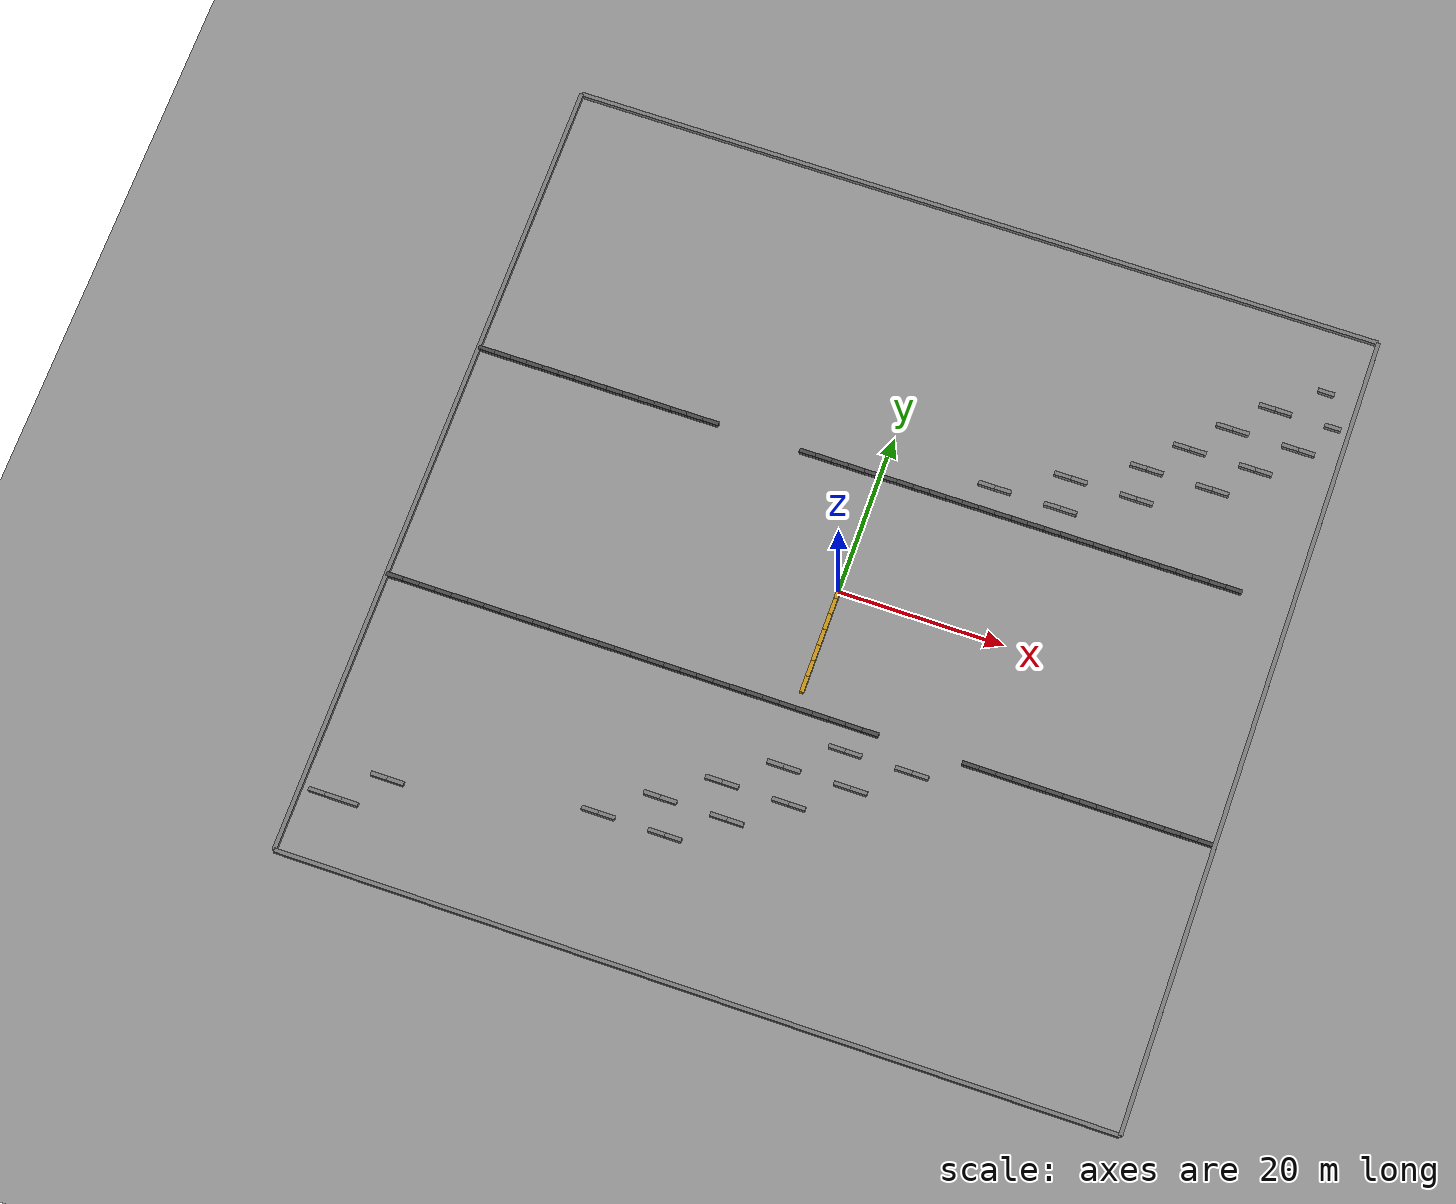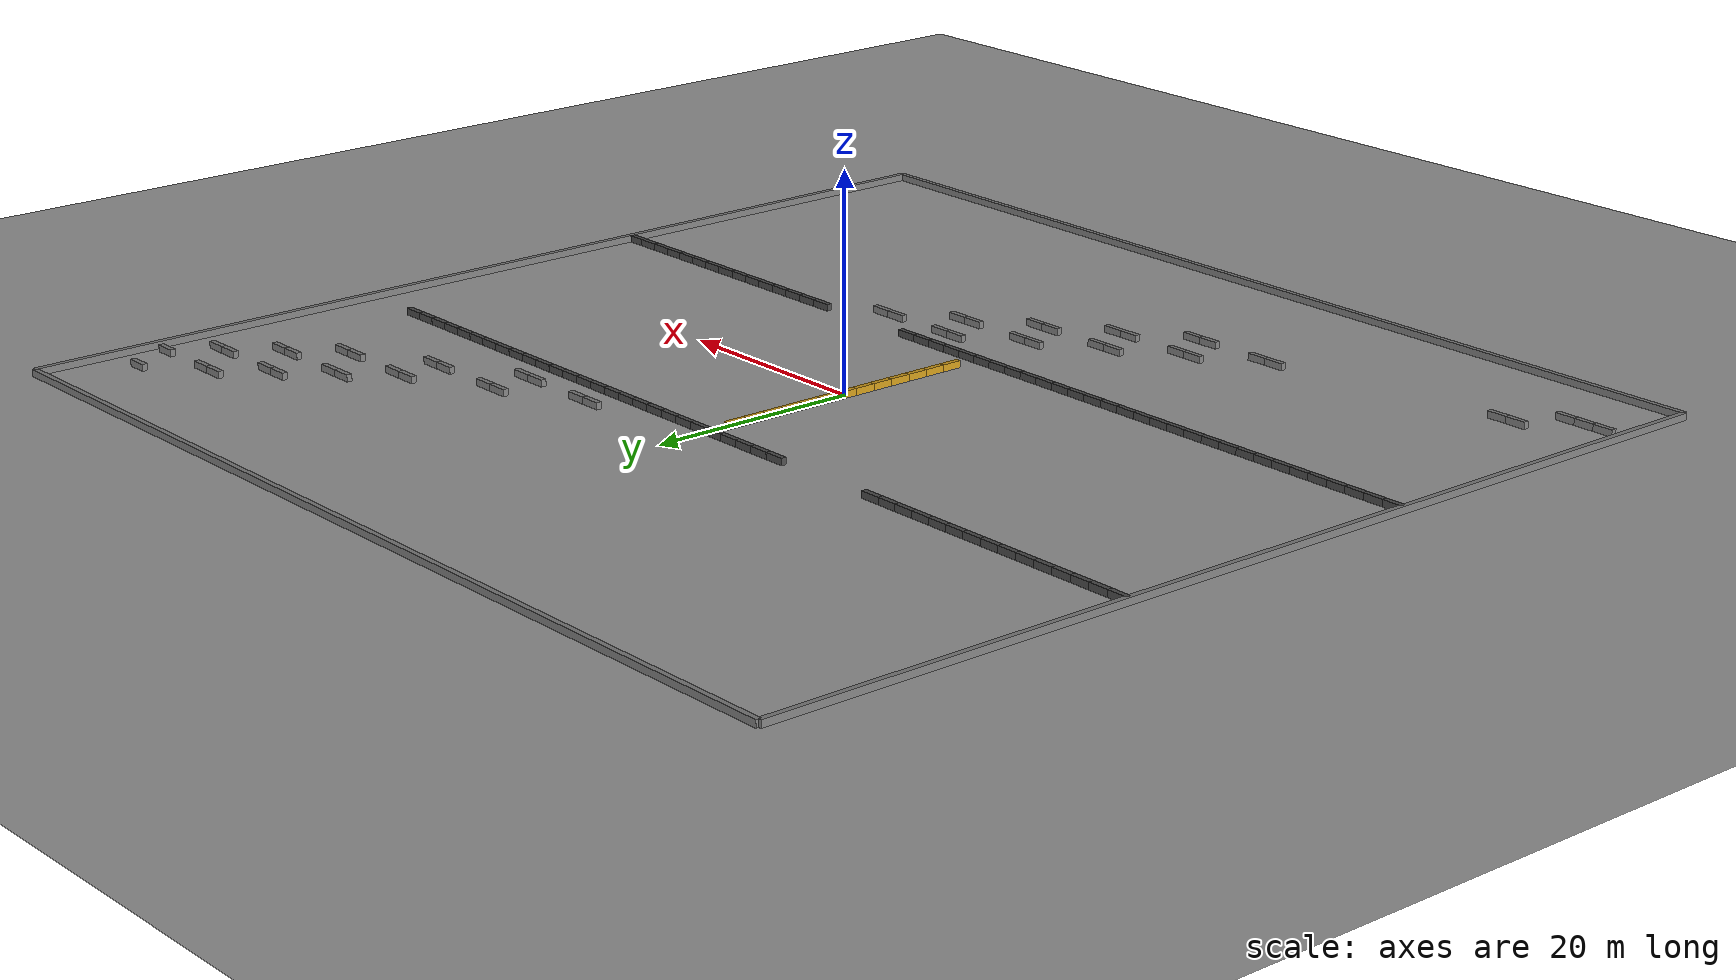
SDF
<sdf version="1.9">
 <world name="default">
  <physics type="ode">
   <max_step_size>0.01</max_step_size>
   <real_time_update_rate>60</real_time_update_rate>
  </physics>
  <model name="ground_plane">
   <static>true</static>
   <link name="link">
    <collision name="collision">
     <geometry><plane><normal>0 0 1</normal><size>100 100</size></plane></geometry>
     <surface><contact><collide_without_contact_bitmask>0x01</collide_without_contact_bitmask></contact></surface>
    </collision>
    <visual name="visual">
     <geometry><plane><normal>0 0 1</normal><size>100 100</size></plane></geometry>
     <material><ambient>0.6 0.6 0.6 1</ambient><diffuse>0.6 0.6 0.6 1</diffuse></material>
    </visual>
   </link>
  </model>
  <model name="topW_01">
   <pose>-49 15 0 0 0 0</pose>
   <link name="l">
    <gravity>false</gravity>
    <visual name="v">
     <geometry><box><size>2 0.5 1</size></box></geometry>
     <material><ambient>0.3 0.3 0.3 1</ambient></material>
    </visual>
   </link>
  </model>
  <model name="topW_02">
   <pose>-47 15 0 0 0 0</pose>
   <link name="l">
    <gravity>false</gravity>
    <visual name="v">
     <geometry><box><size>2 0.5 1</size></box></geometry>
     <material><ambient>0.3 0.3 0.3 1</ambient></material>
    </visual>
   </link>
  </model>
  <model name="topW_03">
   <pose>-45 15 0 0 0 0</pose>
   <link name="l">
    <gravity>false</gravity>
    <visual name="v">
     <geometry><box><size>2 0.5 1</size></box></geometry>
     <material><ambient>0.3 0.3 0.3 1</ambient></material>
    </visual>
   </link>
  </model>
  <model name="topW_04">
   <pose>-43 15 0 0 0 0</pose>
   <link name="l">
    <gravity>false</gravity>
    <visual name="v">
     <geometry><box><size>2 0.5 1</size></box></geometry>
     <material><ambient>0.3 0.3 0.3 1</ambient></material>
    </visual>
   </link>
  </model>
  <model name="topW_05">
   <pose>-41 15 0 0 0 0</pose>
   <link name="l">
    <gravity>false</gravity>
    <visual name="v">
     <geometry><box><size>2 0.5 1</size></box></geometry>
     <material><ambient>0.3 0.3 0.3 1</ambient></material>
    </visual>
   </link>
  </model>
  <model name="topW_06">
   <pose>-39 15 0 0 0 0</pose>
   <link name="l">
    <gravity>false</gravity>
    <visual name="v">
     <geometry><box><size>2 0.5 1</size></box></geometry>
     <material><ambient>0.3 0.3 0.3 1</ambient></material>
    </visual>
   </link>
  </model>
  <model name="topW_07">
   <pose>-37 15 0 0 0 0</pose>
   <link name="l">
    <gravity>false</gravity>
    <visual name="v">
     <geometry><box><size>2 0.5 1</size></box></geometry>
     <material><ambient>0.3 0.3 0.3 1</ambient></material>
    </visual>
   </link>
  </model>
  <model name="topW_08">
   <pose>-35 15 0 0 0 0</pose>
   <link name="l">
    <gravity>false</gravity>
    <visual name="v">
     <geometry><box><size>2 0.5 1</size></box></geometry>
     <material><ambient>0.3 0.3 0.3 1</ambient></material>
    </visual>
   </link>
  </model>
  <model name="topW_09">
   <pose>-33 15 0 0 0 0</pose>
   <link name="l">
    <gravity>false</gravity>
    <visual name="v">
     <geometry><box><size>2 0.5 1</size></box></geometry>
     <material><ambient>0.3 0.3 0.3 1</ambient></material>
    </visual>
   </link>
  </model>
  <model name="topW_10">
   <pose>-31 15 0 0 0 0</pose>
   <link name="l">
    <gravity>false</gravity>
    <visual name="v">
     <geometry><box><size>2 0.5 1</size></box></geometry>
     <material><ambient>0.3 0.3 0.3 1</ambient></material>
    </visual>
   </link>
  </model>
  <model name="topW_11">
   <pose>-29 15 0 0 0 0</pose>
   <link name="l">
    <gravity>false</gravity>
    <visual name="v">
     <geometry><box><size>2 0.5 1</size></box></geometry>
     <material><ambient>0.3 0.3 0.3 1</ambient></material>
    </visual>
   </link>
  </model>
  <model name="topW_12">
   <pose>-27 15 0 0 0 0</pose>
   <link name="l">
    <gravity>false</gravity>
    <visual name="v">
     <geometry><box><size>2 0.5 1</size></box></geometry>
     <material><ambient>0.3 0.3 0.3 1</ambient></material>
    </visual>
   </link>
  </model>
  <model name="topW_13">
   <pose>-25 15 0 0 0 0</pose>
   <link name="l">
    <gravity>false</gravity>
    <visual name="v">
     <geometry><box><size>2 0.5 1</size></box></geometry>
     <material><ambient>0.3 0.3 0.3 1</ambient></material>
    </visual>
   </link>
  </model>
  <model name="topW_14">
   <pose>-23 15 0 0 0 0</pose>
   <link name="l">
    <gravity>false</gravity>
    <visual name="v">
     <geometry><box><size>2 0.5 1</size></box></geometry>
     <material><ambient>0.3 0.3 0.3 1</ambient></material>
    </visual>
   </link>
  </model>
  <model name="topW_15">
   <pose>-21 15 0 0 0 0</pose>
   <link name="l">
    <gravity>false</gravity>
    <visual name="v">
     <geometry><box><size>2 0.5 1</size></box></geometry>
     <material><ambient>0.3 0.3 0.3 1</ambient></material>
    </visual>
   </link>
  </model>
  <model name="topC_01">
   <pose>-9 15 0 0 0 0</pose>
   <link name="l">
    <gravity>false</gravity>
    <visual name="v">
     <geometry><box><size>2 0.5 1</size></box></geometry>
     <material><ambient>0.3 0.3 0.3 1</ambient></material>
    </visual>
   </link>
  </model>
  <model name="topC_02">
   <pose>-7 15 0 0 0 0</pose>
   <link name="l">
    <gravity>false</gravity>
    <visual name="v">
     <geometry><box><size>2 0.5 1</size></box></geometry>
     <material><ambient>0.3 0.3 0.3 1</ambient></material>
    </visual>
   </link>
  </model>
  <model name="topC_03">
   <pose>-5 15 0 0 0 0</pose>
   <link name="l">
    <gravity>false</gravity>
    <visual name="v">
     <geometry><box><size>2 0.5 1</size></box></geometry>
     <material><ambient>0.3 0.3 0.3 1</ambient></material>
    </visual>
   </link>
  </model>
  <model name="topC_04">
   <pose>-3 15 0 0 0 0</pose>
   <link name="l">
    <gravity>false</gravity>
    <visual name="v">
     <geometry><box><size>2 0.5 1</size></box></geometry>
     <material><ambient>0.3 0.3 0.3 1</ambient></material>
    </visual>
   </link>
  </model>
  <model name="topC_05">
   <pose>-1 15 0 0 0 0</pose>
   <link name="l">
    <gravity>false</gravity>
    <visual name="v">
     <geometry><box><size>2 0.5 1</size></box></geometry>
     <material><ambient>0.3 0.3 0.3 1</ambient></material>
    </visual>
   </link>
  </model>
  <model name="topC_06">
   <pose>1 15 0 0 0 0</pose>
   <link name="l">
    <gravity>false</gravity>
    <visual name="v">
     <geometry><box><size>2 0.5 1</size></box></geometry>
     <material><ambient>0.3 0.3 0.3 1</ambient></material>
    </visual>
   </link>
  </model>
  <model name="topC_07">
   <pose>3 15 0 0 0 0</pose>
   <link name="l">
    <gravity>false</gravity>
    <visual name="v">
     <geometry><box><size>2 0.5 1</size></box></geometry>
     <material><ambient>0.3 0.3 0.3 1</ambient></material>
    </visual>
   </link>
  </model>
  <model name="topC_08">
   <pose>5 15 0 0 0 0</pose>
   <link name="l">
    <gravity>false</gravity>
    <visual name="v">
     <geometry><box><size>2 0.5 1</size></box></geometry>
     <material><ambient>0.3 0.3 0.3 1</ambient></material>
    </visual>
   </link>
  </model>
  <model name="topC_09">
   <pose>7 15 0 0 0 0</pose>
   <link name="l">
    <gravity>false</gravity>
    <visual name="v">
     <geometry><box><size>2 0.5 1</size></box></geometry>
     <material><ambient>0.3 0.3 0.3 1</ambient></material>
    </visual>
   </link>
  </model>
  <model name="topC_10">
   <pose>9 15 0 0 0 0</pose>
   <link name="l">
    <gravity>false</gravity>
    <visual name="v">
     <geometry><box><size>2 0.5 1</size></box></geometry>
     <material><ambient>0.3 0.3 0.3 1</ambient></material>
    </visual>
   </link>
  </model>
  <model name="topE_01">
   <pose>21 15 0 0 0 0</pose>
   <link name="l">
    <gravity>false</gravity>
    <visual name="v">
     <geometry><box><size>2 0.5 1</size></box></geometry>
     <material><ambient>0.3 0.3 0.3 1</ambient></material>
    </visual>
   </link>
  </model>
  <model name="topE_02">
   <pose>23 15 0 0 0 0</pose>
   <link name="l">
    <gravity>false</gravity>
    <visual name="v">
     <geometry><box><size>2 0.5 1</size></box></geometry>
     <material><ambient>0.3 0.3 0.3 1</ambient></material>
    </visual>
   </link>
  </model>
  <model name="topE_03">
   <pose>25 15 0 0 0 0</pose>
   <link name="l">
    <gravity>false</gravity>
    <visual name="v">
     <geometry><box><size>2 0.5 1</size></box></geometry>
     <material><ambient>0.3 0.3 0.3 1</ambient></material>
    </visual>
   </link>
  </model>
  <model name="topE_04">
   <pose>27 15 0 0 0 0</pose>
   <link name="l">
    <gravity>false</gravity>
    <visual name="v">
     <geometry><box><size>2 0.5 1</size></box></geometry>
     <material><ambient>0.3 0.3 0.3 1</ambient></material>
    </visual>
   </link>
  </model>
  <model name="topE_05">
   <pose>29 15 0 0 0 0</pose>
   <link name="l">
    <gravity>false</gravity>
    <visual name="v">
     <geometry><box><size>2 0.5 1</size></box></geometry>
     <material><ambient>0.3 0.3 0.3 1</ambient></material>
    </visual>
   </link>
  </model>
  <model name="topE_06">
   <pose>31 15 0 0 0 0</pose>
   <link name="l">
    <gravity>false</gravity>
    <visual name="v">
     <geometry><box><size>2 0.5 1</size></box></geometry>
     <material><ambient>0.3 0.3 0.3 1</ambient></material>
    </visual>
   </link>
  </model>
  <model name="topE_07">
   <pose>33 15 0 0 0 0</pose>
   <link name="l">
    <gravity>false</gravity>
    <visual name="v">
     <geometry><box><size>2 0.5 1</size></box></geometry>
     <material><ambient>0.3 0.3 0.3 1</ambient></material>
    </visual>
   </link>
  </model>
  <model name="topE_08">
   <pose>35 15 0 0 0 0</pose>
   <link name="l">
    <gravity>false</gravity>
    <visual name="v">
     <geometry><box><size>2 0.5 1</size></box></geometry>
     <material><ambient>0.3 0.3 0.3 1</ambient></material>
    </visual>
   </link>
  </model>
  <model name="topE_09">
   <pose>37 15 0 0 0 0</pose>
   <link name="l">
    <gravity>false</gravity>
    <visual name="v">
     <geometry><box><size>2 0.5 1</size></box></geometry>
     <material><ambient>0.3 0.3 0.3 1</ambient></material>
    </visual>
   </link>
  </model>
  <model name="topE_10">
   <pose>39 15 0 0 0 0</pose>
   <link name="l">
    <gravity>false</gravity>
    <visual name="v">
     <geometry><box><size>2 0.5 1</size></box></geometry>
     <material><ambient>0.3 0.3 0.3 1</ambient></material>
    </visual>
   </link>
  </model>
  <model name="topE_11">
   <pose>41 15 0 0 0 0</pose>
   <link name="l">
    <gravity>false</gravity>
    <visual name="v">
     <geometry><box><size>2 0.5 1</size></box></geometry>
     <material><ambient>0.3 0.3 0.3 1</ambient></material>
    </visual>
   </link>
  </model>
  <model name="topE_12">
   <pose>43 15 0 0 0 0</pose>
   <link name="l">
    <gravity>false</gravity>
    <visual name="v">
     <geometry><box><size>2 0.5 1</size></box></geometry>
     <material><ambient>0.3 0.3 0.3 1</ambient></material>
    </visual>
   </link>
  </model>
  <model name="botW_01">
   <pose>-49 -15 0 0 0 0</pose>
   <link name="l">
    <gravity>false</gravity>
    <visual name="v">
     <geometry><box><size>2 0.5 1</size></box></geometry>
     <material><ambient>0.3 0.3 0.3 1</ambient></material>
    </visual>
   </link>
  </model>
  <model name="botW_02">
   <pose>-47 -15 0 0 0 0</pose>
   <link name="l">
    <gravity>false</gravity>
    <visual name="v">
     <geometry><box><size>2 0.5 1</size></box></geometry>
     <material><ambient>0.3 0.3 0.3 1</ambient></material>
    </visual>
   </link>
  </model>
  <model name="botW_03">
   <pose>-45 -15 0 0 0 0</pose>
   <link name="l">
    <gravity>false</gravity>
    <visual name="v">
     <geometry><box><size>2 0.5 1</size></box></geometry>
     <material><ambient>0.3 0.3 0.3 1</ambient></material>
    </visual>
   </link>
  </model>
  <model name="botW_04">
   <pose>-43 -15 0 0 0 0</pose>
   <link name="l">
    <gravity>false</gravity>
    <visual name="v">
     <geometry><box><size>2 0.5 1</size></box></geometry>
     <material><ambient>0.3 0.3 0.3 1</ambient></material>
    </visual>
   </link>
  </model>
  <model name="botW_05">
   <pose>-41 -15 0 0 0 0</pose>
   <link name="l">
    <gravity>false</gravity>
    <visual name="v">
     <geometry><box><size>2 0.5 1</size></box></geometry>
     <material><ambient>0.3 0.3 0.3 1</ambient></material>
    </visual>
   </link>
  </model>
  <model name="botW_06">
   <pose>-39 -15 0 0 0 0</pose>
   <link name="l">
    <gravity>false</gravity>
    <visual name="v">
     <geometry><box><size>2 0.5 1</size></box></geometry>
     <material><ambient>0.3 0.3 0.3 1</ambient></material>
    </visual>
   </link>
  </model>
  <model name="botW_07">
   <pose>-37 -15 0 0 0 0</pose>
   <link name="l">
    <gravity>false</gravity>
    <visual name="v">
     <geometry><box><size>2 0.5 1</size></box></geometry>
     <material><ambient>0.3 0.3 0.3 1</ambient></material>
    </visual>
   </link>
  </model>
  <model name="botW_08">
   <pose>-35 -15 0 0 0 0</pose>
   <link name="l">
    <gravity>false</gravity>
    <visual name="v">
     <geometry><box><size>2 0.5 1</size></box></geometry>
     <material><ambient>0.3 0.3 0.3 1</ambient></material>
    </visual>
   </link>
  </model>
  <model name="botW_09">
   <pose>-33 -15 0 0 0 0</pose>
   <link name="l">
    <gravity>false</gravity>
    <visual name="v">
     <geometry><box><size>2 0.5 1</size></box></geometry>
     <material><ambient>0.3 0.3 0.3 1</ambient></material>
    </visual>
   </link>
  </model>
  <model name="botW_10">
   <pose>-31 -15 0 0 0 0</pose>
   <link name="l">
    <gravity>false</gravity>
    <visual name="v">
     <geometry><box><size>2 0.5 1</size></box></geometry>
     <material><ambient>0.3 0.3 0.3 1</ambient></material>
    </visual>
   </link>
  </model>
  <model name="botW_11">
   <pose>-29 -15 0 0 0 0</pose>
   <link name="l">
    <gravity>false</gravity>
    <visual name="v">
     <geometry><box><size>2 0.5 1</size></box></geometry>
     <material><ambient>0.3 0.3 0.3 1</ambient></material>
    </visual>
   </link>
  </model>
  <model name="botW_12">
   <pose>-27 -15 0 0 0 0</pose>
   <link name="l">
    <gravity>false</gravity>
    <visual name="v">
     <geometry><box><size>2 0.5 1</size></box></geometry>
     <material><ambient>0.3 0.3 0.3 1</ambient></material>
    </visual>
   </link>
  </model>
  <model name="botW_13">
   <pose>-25 -15 0 0 0 0</pose>
   <link name="l">
    <gravity>false</gravity>
    <visual name="v">
     <geometry><box><size>2 0.5 1</size></box></geometry>
     <material><ambient>0.3 0.3 0.3 1</ambient></material>
    </visual>
   </link>
  </model>
  <model name="botW_14">
   <pose>-23 -15 0 0 0 0</pose>
   <link name="l">
    <gravity>false</gravity>
    <visual name="v">
     <geometry><box><size>2 0.5 1</size></box></geometry>
     <material><ambient>0.3 0.3 0.3 1</ambient></material>
    </visual>
   </link>
  </model>
  <model name="botW_15">
   <pose>-21 -15 0 0 0 0</pose>
   <link name="l">
    <gravity>false</gravity>
    <visual name="v">
     <geometry><box><size>2 0.5 1</size></box></geometry>
     <material><ambient>0.3 0.3 0.3 1</ambient></material>
    </visual>
   </link>
  </model>
  <model name="botC_01">
   <pose>-9 -15 0 0 0 0</pose>
   <link name="l">
    <gravity>false</gravity>
    <visual name="v">
     <geometry><box><size>2 0.5 1</size></box></geometry>
     <material><ambient>0.3 0.3 0.3 1</ambient></material>
    </visual>
   </link>
  </model>
  <model name="botC_02">
   <pose>-7 -15 0 0 0 0</pose>
   <link name="l">
    <gravity>false</gravity>
    <visual name="v">
     <geometry><box><size>2 0.5 1</size></box></geometry>
     <material><ambient>0.3 0.3 0.3 1</ambient></material>
    </visual>
   </link>
  </model>
  <model name="botC_03">
   <pose>-5 -15 0 0 0 0</pose>
   <link name="l">
    <gravity>false</gravity>
    <visual name="v">
     <geometry><box><size>2 0.5 1</size></box></geometry>
     <material><ambient>0.3 0.3 0.3 1</ambient></material>
    </visual>
   </link>
  </model>
  <model name="botC_04">
   <pose>-3 -15 0 0 0 0</pose>
   <link name="l">
    <gravity>false</gravity>
    <visual name="v">
     <geometry><box><size>2 0.5 1</size></box></geometry>
     <material><ambient>0.3 0.3 0.3 1</ambient></material>
    </visual>
   </link>
  </model>
  <model name="botC_05">
   <pose>-1 -15 0 0 0 0</pose>
   <link name="l">
    <gravity>false</gravity>
    <visual name="v">
     <geometry><box><size>2 0.5 1</size></box></geometry>
     <material><ambient>0.3 0.3 0.3 1</ambient></material>
    </visual>
   </link>
  </model>
  <model name="botC_06">
   <pose>1 -15 0 0 0 0</pose>
   <link name="l">
    <gravity>false</gravity>
    <visual name="v">
     <geometry><box><size>2 0.5 1</size></box></geometry>
     <material><ambient>0.3 0.3 0.3 1</ambient></material>
    </visual>
   </link>
  </model>
  <model name="botC_07">
   <pose>3 -15 0 0 0 0</pose>
   <link name="l">
    <gravity>false</gravity>
    <visual name="v">
     <geometry><box><size>2 0.5 1</size></box></geometry>
     <material><ambient>0.3 0.3 0.3 1</ambient></material>
    </visual>
   </link>
  </model>
  <model name="botC_08">
   <pose>5 -15 0 0 0 0</pose>
   <link name="l">
    <gravity>false</gravity>
    <visual name="v">
     <geometry><box><size>2 0.5 1</size></box></geometry>
     <material><ambient>0.3 0.3 0.3 1</ambient></material>
    </visual>
   </link>
  </model>
  <model name="botC_09">
   <pose>7 -15 0 0 0 0</pose>
   <link name="l">
    <gravity>false</gravity>
    <visual name="v">
     <geometry><box><size>2 0.5 1</size></box></geometry>
     <material><ambient>0.3 0.3 0.3 1</ambient></material>
    </visual>
   </link>
  </model>
  <model name="botC_10">
   <pose>9 -15 0 0 0 0</pose>
   <link name="l">
    <gravity>false</gravity>
    <visual name="v">
     <geometry><box><size>2 0.5 1</size></box></geometry>
     <material><ambient>0.3 0.3 0.3 1</ambient></material>
    </visual>
   </link>
  </model>
  <model name="botE_01">
   <pose>21 -15 0 0 0 0</pose>
   <link name="l">
    <gravity>false</gravity>
    <visual name="v">
     <geometry><box><size>2 0.5 1</size></box></geometry>
     <material><ambient>0.3 0.3 0.3 1</ambient></material>
    </visual>
   </link>
  </model>
  <model name="botE_02">
   <pose>23 -15 0 0 0 0</pose>
   <link name="l">
    <gravity>false</gravity>
    <visual name="v">
     <geometry><box><size>2 0.5 1</size></box></geometry>
     <material><ambient>0.3 0.3 0.3 1</ambient></material>
    </visual>
   </link>
  </model>
  <model name="botE_03">
   <pose>25 -15 0 0 0 0</pose>
   <link name="l">
    <gravity>false</gravity>
    <visual name="v">
     <geometry><box><size>2 0.5 1</size></box></geometry>
     <material><ambient>0.3 0.3 0.3 1</ambient></material>
    </visual>
   </link>
  </model>
  <model name="botE_04">
   <pose>27 -15 0 0 0 0</pose>
   <link name="l">
    <gravity>false</gravity>
    <visual name="v">
     <geometry><box><size>2 0.5 1</size></box></geometry>
     <material><ambient>0.3 0.3 0.3 1</ambient></material>
    </visual>
   </link>
  </model>
  <model name="botE_05">
   <pose>29 -15 0 0 0 0</pose>
   <link name="l">
    <gravity>false</gravity>
    <visual name="v">
     <geometry><box><size>2 0.5 1</size></box></geometry>
     <material><ambient>0.3 0.3 0.3 1</ambient></material>
    </visual>
   </link>
  </model>
  <model name="botE_06">
   <pose>31 -15 0 0 0 0</pose>
   <link name="l">
    <gravity>false</gravity>
    <visual name="v">
     <geometry><box><size>2 0.5 1</size></box></geometry>
     <material><ambient>0.3 0.3 0.3 1</ambient></material>
    </visual>
   </link>
  </model>
  <model name="botE_07">
   <pose>33 -15 0 0 0 0</pose>
   <link name="l">
    <gravity>false</gravity>
    <visual name="v">
     <geometry><box><size>2 0.5 1</size></box></geometry>
     <material><ambient>0.3 0.3 0.3 1</ambient></material>
    </visual>
   </link>
  </model>
  <model name="botE_08">
   <pose>35 -15 0 0 0 0</pose>
   <link name="l">
    <gravity>false</gravity>
    <visual name="v">
     <geometry><box><size>2 0.5 1</size></box></geometry>
     <material><ambient>0.3 0.3 0.3 1</ambient></material>
    </visual>
   </link>
  </model>
  <model name="botE_09">
   <pose>37 -15 0 0 0 0</pose>
   <link name="l">
    <gravity>false</gravity>
    <visual name="v">
     <geometry><box><size>2 0.5 1</size></box></geometry>
     <material><ambient>0.3 0.3 0.3 1</ambient></material>
    </visual>
   </link>
  </model>
  <model name="botE_10">
   <pose>39 -15 0 0 0 0</pose>
   <link name="l">
    <gravity>false</gravity>
    <visual name="v">
     <geometry><box><size>2 0.5 1</size></box></geometry>
     <material><ambient>0.3 0.3 0.3 1</ambient></material>
    </visual>
   </link>
  </model>
  <model name="botE_11">
   <pose>41 -15 0 0 0 0</pose>
   <link name="l">
    <gravity>false</gravity>
    <visual name="v">
     <geometry><box><size>2 0.5 1</size></box></geometry>
     <material><ambient>0.3 0.3 0.3 1</ambient></material>
    </visual>
   </link>
  </model>
  <model name="botE_12">
   <pose>43 -15 0 0 0 0</pose>
   <link name="l">
    <gravity>false</gravity>
    <visual name="v">
     <geometry><box><size>2 0.5 1</size></box></geometry>
     <material><ambient>0.3 0.3 0.3 1</ambient></material>
    </visual>
   </link>
  </model>
  <model name="botE_13">
   <pose>45 -15 0 0 0 0</pose>
   <link name="l">
    <gravity>false</gravity>
    <visual name="v">
     <geometry><box><size>2 0.5 1</size></box></geometry>
     <material><ambient>0.3 0.3 0.3 1</ambient></material>
    </visual>
   </link>
  </model>
  <model name="botE_14">
   <pose>47 -15 0 0 0 0</pose>
   <link name="l">
    <gravity>false</gravity>
    <visual name="v">
     <geometry><box><size>2 0.5 1</size></box></geometry>
     <material><ambient>0.3 0.3 0.3 1</ambient></material>
    </visual>
   </link>
  </model>
  <model name="botE_15">
   <pose>49 -15 0 0 0 0</pose>
   <link name="l">
    <gravity>false</gravity>
    <visual name="v">
     <geometry><box><size>2 0.5 1</size></box></geometry>
     <material><ambient>0.3 0.3 0.3 1</ambient></material>
    </visual>
   </link>
  </model>
  <model name="div_01">
   <pose>0 -12 0 0 0 0</pose>
   <link name="l">
    <gravity>false</gravity>
    <visual name="v">
     <geometry><box><size>0.5 2 1</size></box></geometry>
     <material><ambient>0.8 0.6 0.1 1</ambient></material>
    </visual>
   </link>
  </model>
  <model name="div_02">
   <pose>0 -10 0 0 0 0</pose>
   <link name="l">
    <gravity>false</gravity>
    <visual name="v">
     <geometry><box><size>0.5 2 1</size></box></geometry>
     <material><ambient>0.8 0.6 0.1 1</ambient></material>
    </visual>
   </link>
  </model>
  <model name="div_03">
   <pose>0 -8 0 0 0 0</pose>
   <link name="l">
    <gravity>false</gravity>
    <visual name="v">
     <geometry><box><size>0.5 2 1</size></box></geometry>
     <material><ambient>0.8 0.6 0.1 1</ambient></material>
    </visual>
   </link>
  </model>
  <model name="div_04">
   <pose>0 -6 0 0 0 0</pose>
   <link name="l">
    <gravity>false</gravity>
    <visual name="v">
     <geometry><box><size>0.5 2 1</size></box></geometry>
     <material><ambient>0.8 0.6 0.1 1</ambient></material>
    </visual>
   </link>
  </model>
  <model name="div_05">
   <pose>0 -4 0 0 0 0</pose>
   <link name="l">
    <gravity>false</gravity>
    <visual name="v">
     <geometry><box><size>0.5 2 1</size></box></geometry>
     <material><ambient>0.8 0.6 0.1 1</ambient></material>
    </visual>
   </link>
  </model>
  <model name="div_06">
   <pose>0 -2 0 0 0 0</pose>
   <link name="l">
    <gravity>false</gravity>
    <visual name="v">
     <geometry><box><size>0.5 2 1</size></box></geometry>
     <material><ambient>0.8 0.6 0.1 1</ambient></material>
    </visual>
   </link>
  </model>
  <model name="div_07">
   <link name="l">
    <gravity>false</gravity>
    <visual name="v">
     <geometry><box><size>0.5 2 1</size></box></geometry>
     <material><ambient>0.8 0.6 0.1 1</ambient></material>
    </visual>
   </link>
  </model>
  <model name="div_08">
   <pose>0 2 0 0 0 0</pose>
   <link name="l">
    <gravity>false</gravity>
    <visual name="v">
     <geometry><box><size>0.5 2 1</size></box></geometry>
     <material><ambient>0.8 0.6 0.1 1</ambient></material>
    </visual>
   </link>
  </model>
  <model name="div_09">
   <pose>0 4 0 0 0 0</pose>
   <link name="l">
    <gravity>false</gravity>
    <visual name="v">
     <geometry><box><size>0.5 2 1</size></box></geometry>
     <material><ambient>0.8 0.6 0.1 1</ambient></material>
    </visual>
   </link>
  </model>
  <model name="div_10">
   <pose>0 6 0 0 0 0</pose>
   <link name="l">
    <gravity>false</gravity>
    <visual name="v">
     <geometry><box><size>0.5 2 1</size></box></geometry>
     <material><ambient>0.8 0.6 0.1 1</ambient></material>
    </visual>
   </link>
  </model>
  <model name="div_11">
   <pose>0 8 0 0 0 0</pose>
   <link name="l">
    <gravity>false</gravity>
    <visual name="v">
     <geometry><box><size>0.5 2 1</size></box></geometry>
     <material><ambient>0.8 0.6 0.1 1</ambient></material>
    </visual>
   </link>
  </model>
  <model name="div_12">
   <pose>0 10 0 0 0 0</pose>
   <link name="l">
    <gravity>false</gravity>
    <visual name="v">
     <geometry><box><size>0.5 2 1</size></box></geometry>
     <material><ambient>0.8 0.6 0.1 1</ambient></material>
    </visual>
   </link>
  </model>
  <model name="div_13">
   <pose>0 12 0 0 0 0</pose>
   <link name="l">
    <gravity>false</gravity>
    <visual name="v">
     <geometry><box><size>0.5 2 1</size></box></geometry>
     <material><ambient>0.8 0.6 0.1 1</ambient></material>
    </visual>
   </link>
  </model>
  <model name="N_01">
   <pose>46 42 0 0 0 0</pose>
   <link name="l">
    <gravity>false</gravity>
    <visual name="v">
     <geometry><box><size>2 0.5 1</size></box></geometry>
     <material><ambient>0.5 0.5 0.5 1</ambient></material>
    </visual>
   </link>
  </model>
  <model name="N_03">
   <pose>40 38 0 0 0 0</pose>
   <link name="l">
    <gravity>false</gravity>
    <visual name="v">
     <geometry><box><size>2 0.5 1</size></box></geometry>
     <material><ambient>0.5 0.5 0.5 1</ambient></material>
    </visual>
   </link>
  </model>
  <model name="N_04">
   <pose>42 38 0 0 0 0</pose>
   <link name="l">
    <gravity>false</gravity>
    <visual name="v">
     <geometry><box><size>2 0.5 1</size></box></geometry>
     <material><ambient>0.5 0.5 0.5 1</ambient></material>
    </visual>
   </link>
  </model>
  <model name="N_05">
   <pose>48 38 0 0 0 0</pose>
   <link name="l">
    <gravity>false</gravity>
    <visual name="v">
     <geometry><box><size>2 0.5 1</size></box></geometry>
     <material><ambient>0.5 0.5 0.5 1</ambient></material>
    </visual>
   </link>
  </model>
  <model name="N_06">
   <pose>36 34 0 0 0 0</pose>
   <link name="l">
    <gravity>false</gravity>
    <visual name="v">
     <geometry><box><size>2 0.5 1</size></box></geometry>
     <material><ambient>0.5 0.5 0.5 1</ambient></material>
    </visual>
   </link>
  </model>
  <model name="N_07">
   <pose>38 34 0 0 0 0</pose>
   <link name="l">
    <gravity>false</gravity>
    <visual name="v">
     <geometry><box><size>2 0.5 1</size></box></geometry>
     <material><ambient>0.5 0.5 0.5 1</ambient></material>
    </visual>
   </link>
  </model>
  <model name="N_08">
   <pose>44 34 0 0 0 0</pose>
   <link name="l">
    <gravity>false</gravity>
    <visual name="v">
     <geometry><box><size>2 0.5 1</size></box></geometry>
     <material><ambient>0.5 0.5 0.5 1</ambient></material>
    </visual>
   </link>
  </model>
  <model name="N_09">
   <pose>46 34 0 0 0 0</pose>
   <link name="l">
    <gravity>false</gravity>
    <visual name="v">
     <geometry><box><size>2 0.5 1</size></box></geometry>
     <material><ambient>0.5 0.5 0.5 1</ambient></material>
    </visual>
   </link>
  </model>
  <model name="N_10">
   <pose>32 30 0 0 0 0</pose>
   <link name="l">
    <gravity>false</gravity>
    <visual name="v">
     <geometry><box><size>2 0.5 1</size></box></geometry>
     <material><ambient>0.5 0.5 0.5 1</ambient></material>
    </visual>
   </link>
  </model>
  <model name="N_11">
   <pose>34 30 0 0 0 0</pose>
   <link name="l">
    <gravity>false</gravity>
    <visual name="v">
     <geometry><box><size>2 0.5 1</size></box></geometry>
     <material><ambient>0.5 0.5 0.5 1</ambient></material>
    </visual>
   </link>
  </model>
  <model name="N_12">
   <pose>40 30 0 0 0 0</pose>
   <link name="l">
    <gravity>false</gravity>
    <visual name="v">
     <geometry><box><size>2 0.5 1</size></box></geometry>
     <material><ambient>0.5 0.5 0.5 1</ambient></material>
    </visual>
   </link>
  </model>
  <model name="N_13">
   <pose>42 30 0 0 0 0</pose>
   <link name="l">
    <gravity>false</gravity>
    <visual name="v">
     <geometry><box><size>2 0.5 1</size></box></geometry>
     <material><ambient>0.5 0.5 0.5 1</ambient></material>
    </visual>
   </link>
  </model>
  <model name="N_14">
   <pose>28 26 0 0 0 0</pose>
   <link name="l">
    <gravity>false</gravity>
    <visual name="v">
     <geometry><box><size>2 0.5 1</size></box></geometry>
     <material><ambient>0.5 0.5 0.5 1</ambient></material>
    </visual>
   </link>
  </model>
  <model name="N_15">
   <pose>30 26 0 0 0 0</pose>
   <link name="l">
    <gravity>false</gravity>
    <visual name="v">
     <geometry><box><size>2 0.5 1</size></box></geometry>
     <material><ambient>0.5 0.5 0.5 1</ambient></material>
    </visual>
   </link>
  </model>
  <model name="N_16">
   <pose>36 26 0 0 0 0</pose>
   <link name="l">
    <gravity>false</gravity>
    <visual name="v">
     <geometry><box><size>2 0.5 1</size></box></geometry>
     <material><ambient>0.5 0.5 0.5 1</ambient></material>
    </visual>
   </link>
  </model>
  <model name="N_17">
   <pose>38 26 0 0 0 0</pose>
   <link name="l">
    <gravity>false</gravity>
    <visual name="v">
     <geometry><box><size>2 0.5 1</size></box></geometry>
     <material><ambient>0.5 0.5 0.5 1</ambient></material>
    </visual>
   </link>
  </model>
  <model name="N_18">
   <pose>20 22 0 0 0 0</pose>
   <link name="l">
    <gravity>false</gravity>
    <visual name="v">
     <geometry><box><size>2 0.5 1</size></box></geometry>
     <material><ambient>0.5 0.5 0.5 1</ambient></material>
    </visual>
   </link>
  </model>
  <model name="N_19">
   <pose>22 22 0 0 0 0</pose>
   <link name="l">
    <gravity>false</gravity>
    <visual name="v">
     <geometry><box><size>2 0.5 1</size></box></geometry>
     <material><ambient>0.5 0.5 0.5 1</ambient></material>
    </visual>
   </link>
  </model>
  <model name="N_20">
   <pose>28 22 0 0 0 0</pose>
   <link name="l">
    <gravity>false</gravity>
    <visual name="v">
     <geometry><box><size>2 0.5 1</size></box></geometry>
     <material><ambient>0.5 0.5 0.5 1</ambient></material>
    </visual>
   </link>
  </model>
  <model name="N_21">
   <pose>30 22 0 0 0 0</pose>
   <link name="l">
    <gravity>false</gravity>
    <visual name="v">
     <geometry><box><size>2 0.5 1</size></box></geometry>
     <material><ambient>0.5 0.5 0.5 1</ambient></material>
    </visual>
   </link>
  </model>
  <model name="N_22">
   <pose>12 18 0 0 0 0</pose>
   <link name="l">
    <gravity>false</gravity>
    <visual name="v">
     <geometry><box><size>2 0.5 1</size></box></geometry>
     <material><ambient>0.5 0.5 0.5 1</ambient></material>
    </visual>
   </link>
  </model>
  <model name="N_23">
   <pose>14 18 0 0 0 0</pose>
   <link name="l">
    <gravity>false</gravity>
    <visual name="v">
     <geometry><box><size>2 0.5 1</size></box></geometry>
     <material><ambient>0.5 0.5 0.5 1</ambient></material>
    </visual>
   </link>
  </model>
  <model name="N_24">
   <pose>20 18 0 0 0 0</pose>
   <link name="l">
    <gravity>false</gravity>
    <visual name="v">
     <geometry><box><size>2 0.5 1</size></box></geometry>
     <material><ambient>0.5 0.5 0.5 1</ambient></material>
    </visual>
   </link>
  </model>
  <model name="N_25">
   <pose>22 18 0 0 0 0</pose>
   <link name="l">
    <gravity>false</gravity>
    <visual name="v">
     <geometry><box><size>2 0.5 1</size></box></geometry>
     <material><ambient>0.5 0.5 0.5 1</ambient></material>
    </visual>
   </link>
  </model>
  <model name="gap_top_e_01">
   <pose>11 15 0 0 0 0</pose>
   <link name="l">
    <gravity>false</gravity>
    <visual name="v">
     <geometry><box><size>2 0.5 1</size></box></geometry>
     <material><ambient>0.3 0.3 0.3 1</ambient></material>
    </visual>
   </link>
  </model>
  <model name="gap_top_e_02">
   <pose>13 15 0 0 0 0</pose>
   <link name="l">
    <gravity>false</gravity>
    <visual name="v">
     <geometry><box><size>2 0.5 1</size></box></geometry>
     <material><ambient>0.3 0.3 0.3 1</ambient></material>
    </visual>
   </link>
  </model>
  <model name="gap_top_e_03">
   <pose>15 15 0 0 0 0</pose>
   <link name="l">
    <gravity>false</gravity>
    <visual name="v">
     <geometry><box><size>2 0.5 1</size></box></geometry>
     <material><ambient>0.3 0.3 0.3 1</ambient></material>
    </visual>
   </link>
  </model>
  <model name="gap_top_e_04">
   <pose>17 15 0 0 0 0</pose>
   <link name="l">
    <gravity>false</gravity>
    <visual name="v">
     <geometry><box><size>2 0.5 1</size></box></geometry>
     <material><ambient>0.3 0.3 0.3 1</ambient></material>
    </visual>
   </link>
  </model>
  <model name="gap_top_e_05">
   <pose>19 15 0 0 0 0</pose>
   <link name="l">
    <gravity>false</gravity>
    <visual name="v">
     <geometry><box><size>2 0.5 1</size></box></geometry>
     <material><ambient>0.3 0.3 0.3 1</ambient></material>
    </visual>
   </link>
  </model>
  <model name="gap_bot_w_01">
   <pose>-19 -15 0 0 0 0</pose>
   <link name="l">
    <gravity>false</gravity>
    <visual name="v">
     <geometry><box><size>2 0.5 1</size></box></geometry>
     <material><ambient>0.3 0.3 0.3 1</ambient></material>
    </visual>
   </link>
  </model>
  <model name="gap_bot_w_02">
   <pose>-17 -15 0 0 0 0</pose>
   <link name="l">
    <gravity>false</gravity>
    <visual name="v">
     <geometry><box><size>2 0.5 1</size></box></geometry>
     <material><ambient>0.3 0.3 0.3 1</ambient></material>
    </visual>
   </link>
  </model>
  <model name="gap_bot_w_03">
   <pose>-15 -15 0 0 0 0</pose>
   <link name="l">
    <gravity>false</gravity>
    <visual name="v">
     <geometry><box><size>2 0.5 1</size></box></geometry>
     <material><ambient>0.3 0.3 0.3 1</ambient></material>
    </visual>
   </link>
  </model>
  <model name="gap_bot_w_04">
   <pose>-13 -15 0 0 0 0</pose>
   <link name="l">
    <gravity>false</gravity>
    <visual name="v">
     <geometry><box><size>2 0.5 1</size></box></geometry>
     <material><ambient>0.3 0.3 0.3 1</ambient></material>
    </visual>
   </link>
  </model>
  <model name="gap_bot_w_05">
   <pose>-11 -15 0 0 0 0</pose>
   <link name="l">
    <gravity>false</gravity>
    <visual name="v">
     <geometry><box><size>2 0.5 1</size></box></geometry>
     <material><ambient>0.3 0.3 0.3 1</ambient></material>
    </visual>
   </link>
  </model>
  <model name="S_01">
   <pose>6 -18 0 0 0 0</pose>
   <link name="l">
    <gravity>false</gravity>
    <visual name="v">
     <geometry><box><size>2 0.5 1</size></box></geometry>
     <material><ambient>0.5 0.5 0.5 1</ambient></material>
    </visual>
   </link>
  </model>
  <model name="S_02">
   <pose>8 -18 0 0 0 0</pose>
   <link name="l">
    <gravity>false</gravity>
    <visual name="v">
     <geometry><box><size>2 0.5 1</size></box></geometry>
     <material><ambient>0.5 0.5 0.5 1</ambient></material>
    </visual>
   </link>
  </model>
  <model name="S_03">
   <pose>14 -18 0 0 0 0</pose>
   <link name="l">
    <gravity>false</gravity>
    <visual name="v">
     <geometry><box><size>2 0.5 1</size></box></geometry>
     <material><ambient>0.5 0.5 0.5 1</ambient></material>
    </visual>
   </link>
  </model>
  <model name="S_04">
   <pose>16 -18 0 0 0 0</pose>
   <link name="l">
    <gravity>false</gravity>
    <visual name="v">
     <geometry><box><size>2 0.5 1</size></box></geometry>
     <material><ambient>0.5 0.5 0.5 1</ambient></material>
    </visual>
   </link>
  </model>
  <model name="S_05">
   <pose>0 -22 0 0 0 0</pose>
   <link name="l">
    <gravity>false</gravity>
    <visual name="v">
     <geometry><box><size>2 0.5 1</size></box></geometry>
     <material><ambient>0.5 0.5 0.5 1</ambient></material>
    </visual>
   </link>
  </model>
  <model name="S_06">
   <pose>2 -22 0 0 0 0</pose>
   <link name="l">
    <gravity>false</gravity>
    <visual name="v">
     <geometry><box><size>2 0.5 1</size></box></geometry>
     <material><ambient>0.5 0.5 0.5 1</ambient></material>
    </visual>
   </link>
  </model>
  <model name="S_07">
   <pose>8 -22 0 0 0 0</pose>
   <link name="l">
    <gravity>false</gravity>
    <visual name="v">
     <geometry><box><size>2 0.5 1</size></box></geometry>
     <material><ambient>0.5 0.5 0.5 1</ambient></material>
    </visual>
   </link>
  </model>
  <model name="S_08">
   <pose>10 -22 0 0 0 0</pose>
   <link name="l">
    <gravity>false</gravity>
    <visual name="v">
     <geometry><box><size>2 0.5 1</size></box></geometry>
     <material><ambient>0.5 0.5 0.5 1</ambient></material>
    </visual>
   </link>
  </model>
  <model name="S_09">
   <pose>-6 -26 0 0 0 0</pose>
   <link name="l">
    <gravity>false</gravity>
    <visual name="v">
     <geometry><box><size>2 0.5 1</size></box></geometry>
     <material><ambient>0.5 0.5 0.5 1</ambient></material>
    </visual>
   </link>
  </model>
  <model name="S_10">
   <pose>-4 -26 0 0 0 0</pose>
   <link name="l">
    <gravity>false</gravity>
    <visual name="v">
     <geometry><box><size>2 0.5 1</size></box></geometry>
     <material><ambient>0.5 0.5 0.5 1</ambient></material>
    </visual>
   </link>
  </model>
  <model name="S_11">
   <pose>2 -26 0 0 0 0</pose>
   <link name="l">
    <gravity>false</gravity>
    <visual name="v">
     <geometry><box><size>2 0.5 1</size></box></geometry>
     <material><ambient>0.5 0.5 0.5 1</ambient></material>
    </visual>
   </link>
  </model>
  <model name="S_12">
   <pose>4 -26 0 0 0 0</pose>
   <link name="l">
    <gravity>false</gravity>
    <visual name="v">
     <geometry><box><size>2 0.5 1</size></box></geometry>
     <material><ambient>0.5 0.5 0.5 1</ambient></material>
    </visual>
   </link>
  </model>
  <model name="S_13">
   <pose>-12 -30 0 0 0 0</pose>
   <link name="l">
    <gravity>false</gravity>
    <visual name="v">
     <geometry><box><size>2 0.5 1</size></box></geometry>
     <material><ambient>0.5 0.5 0.5 1</ambient></material>
    </visual>
   </link>
  </model>
  <model name="S_14">
   <pose>-10 -30 0 0 0 0</pose>
   <link name="l">
    <gravity>false</gravity>
    <visual name="v">
     <geometry><box><size>2 0.5 1</size></box></geometry>
     <material><ambient>0.5 0.5 0.5 1</ambient></material>
    </visual>
   </link>
  </model>
  <model name="S_15">
   <pose>-4 -30 0 0 0 0</pose>
   <link name="l">
    <gravity>false</gravity>
    <visual name="v">
     <geometry><box><size>2 0.5 1</size></box></geometry>
     <material><ambient>0.5 0.5 0.5 1</ambient></material>
    </visual>
   </link>
  </model>
  <model name="S_16">
   <pose>-2 -30 0 0 0 0</pose>
   <link name="l">
    <gravity>false</gravity>
    <visual name="v">
     <geometry><box><size>2 0.5 1</size></box></geometry>
     <material><ambient>0.5 0.5 0.5 1</ambient></material>
    </visual>
   </link>
  </model>
  <model name="S_17">
   <pose>-18 -34 0 0 0 0</pose>
   <link name="l">
    <gravity>false</gravity>
    <visual name="v">
     <geometry><box><size>2 0.5 1</size></box></geometry>
     <material><ambient>0.5 0.5 0.5 1</ambient></material>
    </visual>
   </link>
  </model>
  <model name="S_18">
   <pose>-16 -34 0 0 0 0</pose>
   <link name="l">
    <gravity>false</gravity>
    <visual name="v">
     <geometry><box><size>2 0.5 1</size></box></geometry>
     <material><ambient>0.5 0.5 0.5 1</ambient></material>
    </visual>
   </link>
  </model>
  <model name="S_19">
   <pose>-10 -34 0 0 0 0</pose>
   <link name="l">
    <gravity>false</gravity>
    <visual name="v">
     <geometry><box><size>2 0.5 1</size></box></geometry>
     <material><ambient>0.5 0.5 0.5 1</ambient></material>
    </visual>
   </link>
  </model>
  <model name="S_20">
   <pose>-8 -34 0 0 0 0</pose>
   <link name="l">
    <gravity>false</gravity>
    <visual name="v">
     <geometry><box><size>2 0.5 1</size></box></geometry>
     <material><ambient>0.5 0.5 0.5 1</ambient></material>
    </visual>
   </link>
  </model>
  <model name="S_22">
   <pose>-42 -38 0 0 0 0</pose>
   <link name="l">
    <gravity>false</gravity>
    <visual name="v">
     <geometry><box><size>2 0.5 1</size></box></geometry>
     <material><ambient>0.5 0.5 0.5 1</ambient></material>
    </visual>
   </link>
  </model>
  <model name="S_23">
   <pose>-40 -38 0 0 0 0</pose>
   <link name="l">
    <gravity>false</gravity>
    <visual name="v">
     <geometry><box><size>2 0.5 1</size></box></geometry>
     <material><ambient>0.5 0.5 0.5 1</ambient></material>
    </visual>
   </link>
  </model>
  <model name="S_24">
   <pose>-48 -42 0 0 0 0</pose>
   <link name="l">
    <gravity>false</gravity>
    <visual name="v">
     <geometry><box><size>2 0.5 1</size></box></geometry>
     <material><ambient>0.5 0.5 0.5 1</ambient></material>
    </visual>
   </link>
  </model>
  <model name="S_25">
   <pose>-46 -42 0 0 0 0</pose>
   <link name="l">
    <gravity>false</gravity>
    <visual name="v">
     <geometry><box><size>2 0.5 1</size></box></geometry>
     <material><ambient>0.5 0.5 0.5 1</ambient></material>
    </visual>
   </link>
  </model>
  <model name="S_26">
   <pose>-44 -42 0 0 0 0</pose>
   <link name="l">
    <gravity>false</gravity>
    <visual name="v">
     <geometry><box><size>2 0.5 1</size></box></geometry>
     <material><ambient>0.5 0.5 0.5 1</ambient></material>
    </visual>
   </link>
  </model>
  <model name="boundary_left_visible">
   <pose>-50 0 0 0 0 0</pose>
   <link name="link">
    <gravity>false</gravity>
    <visual name="visual">
     <geometry><box><size>0.5 100 1</size></box></geometry>
     <material><ambient>0.5 0.5 0.5 1</ambient></material>
    </visual>
   </link>
  </model>
  <model name="boundary_right_visible">
   <pose>50 0 0 0 0 0</pose>
   <link name="link">
    <gravity>false</gravity>
    <visual name="visual">
     <geometry><box><size>0.5 100 1</size></box></geometry>
     <material><ambient>0.5 0.5 0.5 1</ambient></material>
    </visual>
   </link>
  </model>
  <model name="boundary_bottom_visible">
   <pose>0 -50 0 0 0 0</pose>
   <link name="link">
    <gravity>false</gravity>
    <visual name="visual">
     <geometry><box><size>100 0.5 1</size></box></geometry>
     <material><ambient>0.5 0.5 0.5 1</ambient></material>
    </visual>
   </link>
  </model>
  <model name="boundary_top_visible">
   <pose>0 50 0 0 0 0</pose>
   <link name="link">
    <gravity>false</gravity>
    <visual name="visual">
     <geometry><box><size>100 0.5 1</size></box></geometry>
     <material><ambient>0.5 0.5 0.5 1</ambient></material>
    </visual>
   </link>
  </model>
 </world>
</sdf>
